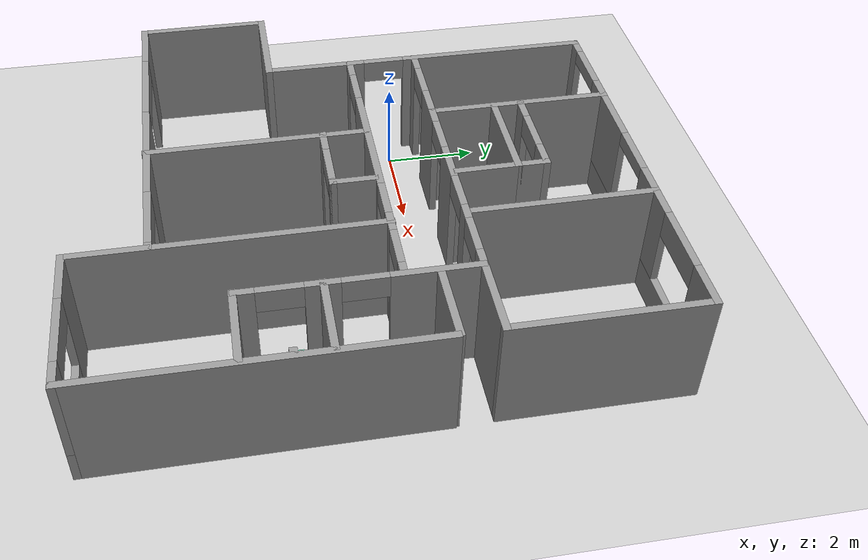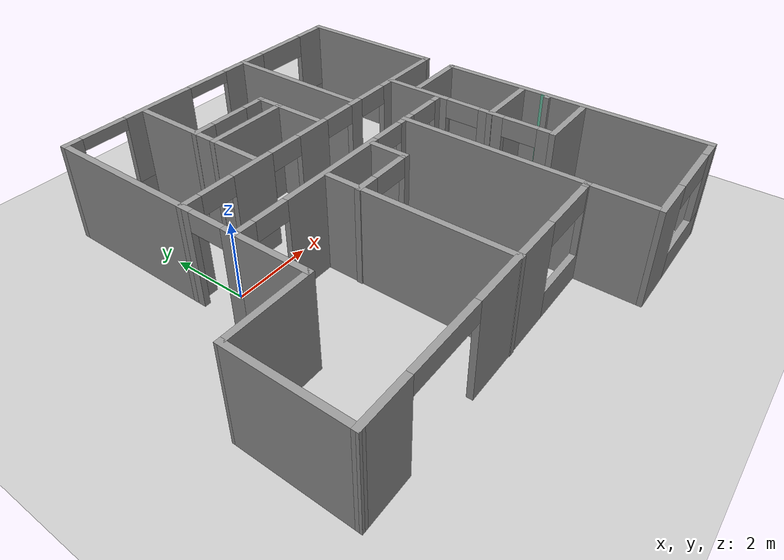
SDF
<sdf version="1.7">
 <world name="default">
  <light name="sun" type="directional">
   <pose>0 0 10 0 -0 0</pose>
   <diffuse>0.8 0.8 0.8 1</diffuse>
   <specular>0.2 0.2 0.2 1</specular>
   <attenuation>
    <range>1000</range>
    <constant>0.9</constant>
    <linear>0.01</linear>
    <quadratic>0.001</quadratic>
   </attenuation>
   <direction>-0.5 0.1 -0.9</direction>
   <spot><inner_angle>0</inner_angle><outer_angle>0</outer_angle><falloff>0</falloff></spot>
  </light>
  <model name="ground_plane">
   <static>1</static>
   <link name="link">
    <collision name="collision">
     <geometry><plane><normal>0 0 1</normal><size>100 100</size></plane></geometry>
     <surface>
      <contact><collide_bitmask>65535</collide_bitmask></contact>
      <friction><ode><mu>100</mu><mu2>50</mu2></ode></friction>
     </surface>
    </collision>
    <visual name="visual">
     <cast_shadows>0</cast_shadows>
     <geometry><plane><normal>0 0 1</normal><size>100 100</size></plane></geometry>
     <material>
      <script><uri>file://media/materials/scripts/gazebo.material</uri><name>Gazebo/Grey</name></script>
     </material>
    </visual>
   </link>
  </model>
  <gravity>0 0 -9.8</gravity>
  <magnetic_field>6e-06 2.3e-05 -4.2e-05</magnetic_field>
  <atmosphere type="adiabatic"/>
  <physics type="ode">
   <max_step_size>0.001</max_step_size>
   <real_time_factor>1</real_time_factor>
   <real_time_update_rate>1000</real_time_update_rate>
  </physics>
  <scene><ambient>0.4 0.4 0.4 1</ambient><background>0.7 0.7 0.7 1</background><shadows>1</shadows></scene>
  <spherical_coordinates>
   <surface_model>EARTH_WGS84</surface_model>
   <latitude_deg>0</latitude_deg>
   <longitude_deg>0</longitude_deg>
   <elevation>0</elevation>
   <heading_deg>0</heading_deg>
  </spherical_coordinates>
  <model name="casaMV">
   <pose>2.65857 -1.25997 0 0 -0 0</pose>
   <link name="Wall_0">
    <pose>-3.25857 3.1063 0 0 -0 -1.5708</pose>
    <visual name="Wall_0_Visual_0">
     <pose>-0.651519 0 1.25 0 -0 0</pose>
     <geometry><box><size>4.19965 0.15 2.5</size></box></geometry>
     <material>
      <script><uri>file://media/materials/scripts/gazebo.material</uri><name>Gazebo/Grey</name></script>
      <ambient>1 1 1 1</ambient>
     </material>
     <meta><layer>0</layer></meta>
    </visual>
    <collision name="Wall_0_Collision_0">
     <geometry><box><size>4.19965 0.15 2.5</size></box></geometry>
     <pose>-0.651519 0 1.25 0 -0 0</pose>
    </collision>
    <visual name="Wall_0_Visual_1">
     <pose>2.54982 0 1.25 0 -0 0</pose>
     <geometry><box><size>0.403038 0.15 2.5</size></box></geometry>
     <material>
      <script><uri>file://media/materials/scripts/gazebo.material</uri><name>Gazebo/Grey</name></script>
      <ambient>1 1 1 1</ambient>
     </material>
     <meta><layer>0</layer></meta>
    </visual>
    <collision name="Wall_0_Collision_1">
     <geometry><box><size>0.403038 0.15 2.5</size></box></geometry>
     <pose>2.54982 0 1.25 0 -0 0</pose>
    </collision>
    <visual name="Wall_0_Visual_2">
     <pose>1.8983 0 2.25 0 -0 0</pose>
     <geometry><box><size>0.9 0.15 0.5</size></box></geometry>
     <material>
      <script><uri>file://media/materials/scripts/gazebo.material</uri><name>Gazebo/Grey</name></script>
      <ambient>1 1 1 1</ambient>
     </material>
     <meta><layer>0</layer></meta>
    </visual>
    <collision name="Wall_0_Collision_2">
     <geometry><box><size>0.9 0.15 0.5</size></box></geometry>
     <pose>1.8983 0 2.25 0 -0 0</pose>
    </collision>
   </link>
   <link name="Wall_141">
    <collision name="Wall_141_Collision">
     <geometry><box><size>1.75 0.15 2.5</size></box></geometry>
     <pose>0 0 1.25 0 -0 0</pose>
    </collision>
    <visual name="Wall_141_Visual">
     <pose>0 0 1.25 0 -0 0</pose>
     <geometry><box><size>1.75 0.15 2.5</size></box></geometry>
     <material>
      <script><uri>file://media/materials/scripts/gazebo.material</uri><name>Gazebo/Grey</name></script>
      <ambient>1 1 1 1</ambient>
     </material>
     <meta><layer>0</layer></meta>
    </visual>
    <pose>4.50072 -2.70834 0 0 -0 0</pose>
   </link>
   <link name="Wall_143">
    <collision name="Wall_143_Collision">
     <geometry><box><size>7 0.15 2.5</size></box></geometry>
     <pose>0 0 1.25 0 -0 0</pose>
    </collision>
    <visual name="Wall_143_Visual">
     <pose>0 0 1.25 0 -0 0</pose>
     <geometry><box><size>7 0.15 2.5</size></box></geometry>
     <material>
      <script><uri>file://media/materials/scripts/gazebo.material</uri><name>Gazebo/Grey</name></script>
      <ambient>1 1 1 1</ambient>
     </material>
     <meta><layer>0</layer></meta>
    </visual>
    <pose>5.36197 -2.35862 0 0 -0 -1.5708</pose>
   </link>
   <link name="Wall_17">
    <pose>1.04143 5.78264 0 0 -0 0</pose>
    <visual name="Wall_17_Visual_0">
     <pose>-4.13766 0 1.25 0 -0 0</pose>
     <geometry><box><size>0.474681 0.15 2.5</size></box></geometry>
     <material>
      <script><uri>file://media/materials/scripts/gazebo.material</uri><name>Gazebo/Grey</name></script>
      <ambient>1 1 1 1</ambient>
     </material>
     <meta><layer>0</layer></meta>
    </visual>
    <collision name="Wall_17_Collision_0">
     <geometry><box><size>0.474681 0.15 2.5</size></box></geometry>
     <pose>-4.13766 0 1.25 0 -0 0</pose>
    </collision>
    <visual name="Wall_17_Visual_1">
     <pose>0.23734 0 0.35 0 -0 0</pose>
     <geometry><box><size>8.27532 0.15 0.7</size></box></geometry>
     <material>
      <script><uri>file://media/materials/scripts/gazebo.material</uri><name>Gazebo/Grey</name></script>
      <ambient>1 1 1 1</ambient>
     </material>
     <meta><layer>0</layer></meta>
    </visual>
    <collision name="Wall_17_Collision_1">
     <geometry><box><size>8.27532 0.15 0.7</size></box></geometry>
     <pose>0.23734 0 0.35 0 -0 0</pose>
    </collision>
    <visual name="Wall_17_Visual_2">
     <pose>-1.71332 0 1.6 0 -0 0</pose>
     <geometry><box><size>1.974 0.15 1.8</size></box></geometry>
     <material>
      <script><uri>file://media/materials/scripts/gazebo.material</uri><name>Gazebo/Grey</name></script>
      <ambient>1 1 1 1</ambient>
     </material>
     <meta><layer>0</layer></meta>
    </visual>
    <collision name="Wall_17_Collision_2">
     <geometry><box><size>1.974 0.15 1.8</size></box></geometry>
     <pose>-1.71332 0 1.6 0 -0 0</pose>
    </collision>
    <visual name="Wall_17_Visual_3">
     <pose>1.17293 0 1.6 0 -0 0</pose>
     <geometry><box><size>1.3985 0.15 1.8</size></box></geometry>
     <material>
      <script><uri>file://media/materials/scripts/gazebo.material</uri><name>Gazebo/Grey</name></script>
      <ambient>1 1 1 1</ambient>
     </material>
     <meta><layer>0</layer></meta>
    </visual>
    <collision name="Wall_17_Collision_3">
     <geometry><box><size>1.3985 0.15 1.8</size></box></geometry>
     <pose>1.17293 0 1.6 0 -0 0</pose>
    </collision>
    <visual name="Wall_17_Visual_4">
     <pose>3.87359 0 1.6 0 -0 0</pose>
     <geometry><box><size>1.00282 0.15 1.8</size></box></geometry>
     <material>
      <script><uri>file://media/materials/scripts/gazebo.material</uri><name>Gazebo/Grey</name></script>
      <ambient>1 1 1 1</ambient>
     </material>
     <meta><layer>0</layer></meta>
    </visual>
    <collision name="Wall_17_Collision_4">
     <geometry><box><size>1.00282 0.15 1.8</size></box></geometry>
     <pose>3.87359 0 1.6 0 -0 0</pose>
    </collision>
    <visual name="Wall_17_Visual_5">
     <pose>2.62218 0 0.7 0 -0 0</pose>
     <geometry><box><size>1.5 0.15 0</size></box></geometry>
     <material>
      <script><uri>file://media/materials/scripts/gazebo.material</uri><name>Gazebo/Grey</name></script>
      <ambient>1 1 1 1</ambient>
     </material>
     <meta><layer>0</layer></meta>
    </visual>
    <collision name="Wall_17_Collision_5">
     <geometry><box><size>1.5 0.15 0</size></box></geometry>
     <pose>2.62218 0 0.7 0 -0 0</pose>
    </collision>
    <visual name="Wall_17_Visual_6">
     <pose>2.62218 0 2.2 0 -0 0</pose>
     <geometry><box><size>1.5 0.15 0.6</size></box></geometry>
     <material>
      <script><uri>file://media/materials/scripts/gazebo.material</uri><name>Gazebo/Grey</name></script>
      <ambient>1 1 1 1</ambient>
     </material>
     <meta><layer>0</layer></meta>
    </visual>
    <collision name="Wall_17_Collision_6">
     <geometry><box><size>1.5 0.15 0.6</size></box></geometry>
     <pose>2.62218 0 2.2 0 -0 0</pose>
    </collision>
    <visual name="Wall_17_Visual_7">
     <pose>-3.30032 0 2.35 0 -0 0</pose>
     <geometry><box><size>1.2 0.15 0.3</size></box></geometry>
     <material>
      <script><uri>file://media/materials/scripts/gazebo.material</uri><name>Gazebo/Grey</name></script>
      <ambient>1 1 1 1</ambient>
     </material>
     <meta><layer>0</layer></meta>
    </visual>
    <collision name="Wall_17_Collision_7">
     <geometry><box><size>1.2 0.15 0.3</size></box></geometry>
     <pose>-3.30032 0 2.35 0 -0 0</pose>
    </collision>
    <visual name="Wall_17_Visual_8">
     <pose>-0.126319 0 2.35 0 -0 0</pose>
     <geometry><box><size>1.2 0.15 0.3</size></box></geometry>
     <material>
      <script><uri>file://media/materials/scripts/gazebo.material</uri><name>Gazebo/Grey</name></script>
      <ambient>1 1 1 1</ambient>
     </material>
     <meta><layer>0</layer></meta>
    </visual>
    <collision name="Wall_17_Collision_8">
     <geometry><box><size>1.2 0.15 0.3</size></box></geometry>
     <pose>-0.126319 0 2.35 0 -0 0</pose>
    </collision>
   </link>
   <link name="Wall_176">
    <pose>3.81197 -5.78362 0 0 -0 0</pose>
    <visual name="Wall_176_Visual_0">
     <pose>-1.04893 0 1.25 0 -0 0</pose>
     <geometry><box><size>1.15214 0.15 2.5</size></box></geometry>
     <material>
      <script><uri>file://media/materials/scripts/gazebo.material</uri><name>Gazebo/Grey</name></script>
      <ambient>1 1 1 1</ambient>
     </material>
     <meta><layer>0</layer></meta>
    </visual>
    <collision name="Wall_176_Collision_0">
     <geometry><box><size>1.15214 0.15 2.5</size></box></geometry>
     <pose>-1.04893 0 1.25 0 -0 0</pose>
    </collision>
    <visual name="Wall_176_Visual_1">
     <pose>0.576072 0 0.35 0 -0 0</pose>
     <geometry><box><size>2.09786 0.15 0.7</size></box></geometry>
     <material>
      <script><uri>file://media/materials/scripts/gazebo.material</uri><name>Gazebo/Grey</name></script>
      <ambient>1 1 1 1</ambient>
     </material>
     <meta><layer>0</layer></meta>
    </visual>
    <collision name="Wall_176_Collision_1">
     <geometry><box><size>2.09786 0.15 0.7</size></box></geometry>
     <pose>0.576072 0 0.35 0 -0 0</pose>
    </collision>
    <visual name="Wall_176_Visual_2">
     <pose>1.32607 0 1.6 0 -0 0</pose>
     <geometry><box><size>0.597857 0.15 1.8</size></box></geometry>
     <material>
      <script><uri>file://media/materials/scripts/gazebo.material</uri><name>Gazebo/Grey</name></script>
      <ambient>1 1 1 1</ambient>
     </material>
     <meta><layer>0</layer></meta>
    </visual>
    <collision name="Wall_176_Collision_2">
     <geometry><box><size>0.597857 0.15 1.8</size></box></geometry>
     <pose>1.32607 0 1.6 0 -0 0</pose>
    </collision>
    <visual name="Wall_176_Visual_3">
     <pose>0.277143 0 2.2 0 -0 0</pose>
     <geometry><box><size>1.5 0.15 0.6</size></box></geometry>
     <material>
      <script><uri>file://media/materials/scripts/gazebo.material</uri><name>Gazebo/Grey</name></script>
      <ambient>1 1 1 1</ambient>
     </material>
     <meta><layer>0</layer></meta>
    </visual>
    <collision name="Wall_176_Collision_3">
     <geometry><box><size>1.5 0.15 0.6</size></box></geometry>
     <pose>0.277143 0 2.2 0 -0 0</pose>
    </collision>
   </link>
   <link name="Wall_18">
    <collision name="Wall_18_Collision">
     <geometry><box><size>4.00269 0.15 2.5</size></box></geometry>
     <pose>0 0 1.25 0 -0 0</pose>
    </collision>
    <visual name="Wall_18_Visual">
     <pose>0 0 1.25 0 -0 0</pose>
     <geometry><box><size>4.00269 0.15 2.5</size></box></geometry>
     <material>
      <script><uri>file://media/materials/scripts/gazebo.material</uri><name>Gazebo/Grey</name></script>
      <ambient>1 1 1 1</ambient>
     </material>
     <meta><layer>0</layer></meta>
    </visual>
    <pose>5.34143 3.8563 0 0 -0 -1.5708</pose>
   </link>
   <link name="Wall_181">
    <collision name="Wall_181_Collision">
     <geometry><box><size>0.75 0.15 2.5</size></box></geometry>
     <pose>0 0 1.25 0 -0 0</pose>
    </collision>
    <visual name="Wall_181_Visual">
     <pose>0 0 1.25 0 -0 0</pose>
     <geometry><box><size>0.75 0.15 2.5</size></box></geometry>
     <material>
      <script><uri>file://media/materials/scripts/gazebo.material</uri><name>Gazebo/Grey</name></script>
      <ambient>1 1 1 1</ambient>
     </material>
     <meta><layer>0</layer></meta>
    </visual>
    <pose>0.971071 3.59397 0 0 -0 1.5708</pose>
   </link>
   <link name="Wall_182">
    <pose>-0.078929 3.89397 0 0 -0 3.14159</pose>
    <visual name="Wall_182_Visual_0">
     <pose>-0.799519 0 1.25 0 -0 0</pose>
     <geometry><box><size>0.650962 0.15 2.5</size></box></geometry>
     <material>
      <script><uri>file://media/materials/scripts/gazebo.material</uri><name>Gazebo/Grey</name></script>
      <ambient>1 1 1 1</ambient>
     </material>
     <meta><layer>0</layer></meta>
    </visual>
    <collision name="Wall_182_Collision_0">
     <geometry><box><size>0.650962 0.15 2.5</size></box></geometry>
     <pose>-0.799519 0 1.25 0 -0 0</pose>
    </collision>
    <visual name="Wall_182_Visual_1">
     <pose>0.828981 0 1.25 0 -0 0</pose>
     <geometry><box><size>0.592038 0.15 2.5</size></box></geometry>
     <material>
      <script><uri>file://media/materials/scripts/gazebo.material</uri><name>Gazebo/Grey</name></script>
      <ambient>1 1 1 1</ambient>
     </material>
     <meta><layer>0</layer></meta>
    </visual>
    <collision name="Wall_182_Collision_1">
     <geometry><box><size>0.592038 0.15 2.5</size></box></geometry>
     <pose>0.828981 0 1.25 0 -0 0</pose>
    </collision>
    <visual name="Wall_182_Visual_2">
     <pose>0.029462 0 2.25 0 -0 0</pose>
     <geometry><box><size>1.007 0.15 0.5</size></box></geometry>
     <material>
      <script><uri>file://media/materials/scripts/gazebo.material</uri><name>Gazebo/Grey</name></script>
      <ambient>1 1 1 1</ambient>
     </material>
     <meta><layer>0</layer></meta>
    </visual>
    <collision name="Wall_182_Collision_2">
     <geometry><box><size>1.007 0.15 0.5</size></box></geometry>
     <pose>0.029462 0 2.25 0 -0 0</pose>
    </collision>
   </link>
   <link name="Wall_184">
    <pose>-1.56188 -4.19019 0 0 -0 0</pose>
    <visual name="Wall_184_Visual_0">
     <pose>-3.21151 0 1.25 0 -0 0</pose>
     <geometry><box><size>1.32699 0.15 2.5</size></box></geometry>
     <material>
      <script><uri>file://media/materials/scripts/gazebo.material</uri><name>Gazebo/Grey</name></script>
      <ambient>1 1 1 1</ambient>
     </material>
     <meta><layer>0</layer></meta>
    </visual>
    <collision name="Wall_184_Collision_0">
     <geometry><box><size>1.32699 0.15 2.5</size></box></geometry>
     <pose>-3.21151 0 1.25 0 -0 0</pose>
    </collision>
    <visual name="Wall_184_Visual_1">
     <pose>0.813736 0 1.25 0 -0 0</pose>
     <geometry><box><size>2.7235 0.15 2.5</size></box></geometry>
     <material>
      <script><uri>file://media/materials/scripts/gazebo.material</uri><name>Gazebo/Grey</name></script>
      <ambient>1 1 1 1</ambient>
     </material>
     <meta><layer>0</layer></meta>
    </visual>
    <collision name="Wall_184_Collision_1">
     <geometry><box><size>2.7235 0.15 2.5</size></box></geometry>
     <pose>0.813736 0 1.25 0 -0 0</pose>
    </collision>
    <visual name="Wall_184_Visual_2">
     <pose>3.02524 0 0.35 0 -0 0</pose>
     <geometry><box><size>1.69952 0.15 0.7</size></box></geometry>
     <material>
      <script><uri>file://media/materials/scripts/gazebo.material</uri><name>Gazebo/Grey</name></script>
      <ambient>1 1 1 1</ambient>
     </material>
     <meta><layer>0</layer></meta>
    </visual>
    <collision name="Wall_184_Collision_2">
     <geometry><box><size>1.69952 0.15 0.7</size></box></geometry>
     <pose>3.02524 0 0.35 0 -0 0</pose>
    </collision>
    <visual name="Wall_184_Visual_3">
     <pose>3.77524 0 1.6 0 -0 0</pose>
     <geometry><box><size>0.199515 0.15 1.8</size></box></geometry>
     <material>
      <script><uri>file://media/materials/scripts/gazebo.material</uri><name>Gazebo/Grey</name></script>
      <ambient>1 1 1 1</ambient>
     </material>
     <meta><layer>0</layer></meta>
    </visual>
    <collision name="Wall_184_Collision_3">
     <geometry><box><size>0.199515 0.15 1.8</size></box></geometry>
     <pose>3.77524 0 1.6 0 -0 0</pose>
    </collision>
    <visual name="Wall_184_Visual_4">
     <pose>2.92549 0 2.2 0 -0 0</pose>
     <geometry><box><size>1.5 0.15 0.6</size></box></geometry>
     <material>
      <script><uri>file://media/materials/scripts/gazebo.material</uri><name>Gazebo/Grey</name></script>
      <ambient>1 1 1 1</ambient>
     </material>
     <meta><layer>0</layer></meta>
    </visual>
    <collision name="Wall_184_Collision_4">
     <geometry><box><size>1.5 0.15 0.6</size></box></geometry>
     <pose>2.92549 0 2.2 0 -0 0</pose>
    </collision>
    <visual name="Wall_184_Visual_5">
     <pose>-1.54801 0 2.25 0 -0 0</pose>
     <geometry><box><size>2 0.15 0.5</size></box></geometry>
     <material>
      <script><uri>file://media/materials/scripts/gazebo.material</uri><name>Gazebo/Grey</name></script>
      <ambient>1 1 1 1</ambient>
     </material>
     <meta><layer>0</layer></meta>
    </visual>
    <collision name="Wall_184_Collision_5">
     <geometry><box><size>2 0.15 0.5</size></box></geometry>
     <pose>-1.54801 0 2.25 0 -0 0</pose>
    </collision>
   </link>
   <link name="Wall_2">
    <pose>1.04101 1.93039 0 0 -0 0</pose>
    <visual name="Wall_2_Visual_0">
     <pose>-4.10845 0 1.25 0 -0 0</pose>
     <geometry><box><size>0.533098 0.15 2.5</size></box></geometry>
     <material>
      <script><uri>file://media/materials/scripts/gazebo.material</uri><name>Gazebo/Grey</name></script>
      <ambient>1 1 1 1</ambient>
     </material>
     <meta><layer>0</layer></meta>
    </visual>
    <collision name="Wall_2_Collision_0">
     <geometry><box><size>0.533098 0.15 2.5</size></box></geometry>
     <pose>-4.10845 0 1.25 0 -0 0</pose>
    </collision>
    <visual name="Wall_2_Visual_1">
     <pose>-2.36265 0 1.25 0 -0 0</pose>
     <geometry><box><size>1.1585 0.15 2.5</size></box></geometry>
     <material>
      <script><uri>file://media/materials/scripts/gazebo.material</uri><name>Gazebo/Grey</name></script>
      <ambient>1 1 1 1</ambient>
     </material>
     <meta><layer>0</layer></meta>
    </visual>
    <collision name="Wall_2_Collision_1">
     <geometry><box><size>1.1585 0.15 2.5</size></box></geometry>
     <pose>-2.36265 0 1.25 0 -0 0</pose>
    </collision>
    <visual name="Wall_2_Visual_2">
     <pose>-0.401671 0 1.25 0 -0 0</pose>
     <geometry><box><size>0.963462 0.15 2.5</size></box></geometry>
     <material>
      <script><uri>file://media/materials/scripts/gazebo.material</uri><name>Gazebo/Grey</name></script>
      <ambient>1 1 1 1</ambient>
     </material>
     <meta><layer>0</layer></meta>
    </visual>
    <collision name="Wall_2_Collision_2">
     <geometry><box><size>0.963462 0.15 2.5</size></box></geometry>
     <pose>-0.401671 0 1.25 0 -0 0</pose>
    </collision>
    <visual name="Wall_2_Visual_3">
     <pose>1.18006 0 1.25 0 -0 0</pose>
     <geometry><box><size>0.4 0.15 2.5</size></box></geometry>
     <material>
      <script><uri>file://media/materials/scripts/gazebo.material</uri><name>Gazebo/Grey</name></script>
      <ambient>1 1 1 1</ambient>
     </material>
     <meta><layer>0</layer></meta>
    </visual>
    <collision name="Wall_2_Collision_3">
     <geometry><box><size>0.4 0.15 2.5</size></box></geometry>
     <pose>1.18006 0 1.25 0 -0 0</pose>
    </collision>
    <visual name="Wall_2_Visual_4">
     <pose>3.32753 0 1.25 0 -0 0</pose>
     <geometry><box><size>2.09494 0.15 2.5</size></box></geometry>
     <material>
      <script><uri>file://media/materials/scripts/gazebo.material</uri><name>Gazebo/Grey</name></script>
      <ambient>1 1 1 1</ambient>
     </material>
     <meta><layer>0</layer></meta>
    </visual>
    <collision name="Wall_2_Collision_4">
     <geometry><box><size>2.09494 0.15 2.5</size></box></geometry>
     <pose>3.32753 0 1.25 0 -0 0</pose>
    </collision>
    <visual name="Wall_2_Visual_5">
     <pose>-3.3919 0 2.25 0 -0 0</pose>
     <geometry><box><size>0.9 0.15 0.5</size></box></geometry>
     <material>
      <script><uri>file://media/materials/scripts/gazebo.material</uri><name>Gazebo/Grey</name></script>
      <ambient>1 1 1 1</ambient>
     </material>
     <meta><layer>0</layer></meta>
    </visual>
    <collision name="Wall_2_Collision_5">
     <geometry><box><size>0.9 0.15 0.5</size></box></geometry>
     <pose>-3.3919 0 2.25 0 -0 0</pose>
    </collision>
    <visual name="Wall_2_Visual_6">
     <pose>-1.3334 0 2.25 0 -0 0</pose>
     <geometry><box><size>0.9 0.15 0.5</size></box></geometry>
     <material>
      <script><uri>file://media/materials/scripts/gazebo.material</uri><name>Gazebo/Grey</name></script>
      <ambient>1 1 1 1</ambient>
     </material>
     <meta><layer>0</layer></meta>
    </visual>
    <collision name="Wall_2_Collision_6">
     <geometry><box><size>0.9 0.15 0.5</size></box></geometry>
     <pose>-1.3334 0 2.25 0 -0 0</pose>
    </collision>
    <visual name="Wall_2_Visual_7">
     <pose>0.53006 0 2.25 0 -0 0</pose>
     <geometry><box><size>0.9 0.15 0.5</size></box></geometry>
     <material>
      <script><uri>file://media/materials/scripts/gazebo.material</uri><name>Gazebo/Grey</name></script>
      <ambient>1 1 1 1</ambient>
     </material>
     <meta><layer>0</layer></meta>
    </visual>
    <collision name="Wall_2_Collision_7">
     <geometry><box><size>0.9 0.15 0.5</size></box></geometry>
     <pose>0.53006 0 2.25 0 -0 0</pose>
    </collision>
    <visual name="Wall_2_Visual_8">
     <pose>1.83006 0 2.25 0 -0 0</pose>
     <geometry><box><size>0.9 0.15 0.5</size></box></geometry>
     <material>
      <script><uri>file://media/materials/scripts/gazebo.material</uri><name>Gazebo/Grey</name></script>
      <ambient>1 1 1 1</ambient>
     </material>
     <meta><layer>0</layer></meta>
    </visual>
    <collision name="Wall_2_Collision_8">
     <geometry><box><size>0.9 0.15 0.5</size></box></geometry>
     <pose>1.83006 0 2.25 0 -0 0</pose>
    </collision>
   </link>
   <link name="Wall_21">
    <collision name="Wall_21_Collision">
     <geometry><box><size>4 0.15 2.5</size></box></geometry>
     <pose>0 0 1.25 0 -0 0</pose>
    </collision>
    <visual name="Wall_21_Visual">
     <pose>0 0 1.25 0 -0 0</pose>
     <geometry><box><size>4 0.15 2.5</size></box></geometry>
     <material>
      <script><uri>file://media/materials/scripts/gazebo.material</uri><name>Gazebo/Grey</name></script>
      <ambient>1 1 1 1</ambient>
     </material>
     <meta><layer>0</layer></meta>
    </visual>
    <pose>-1.12569 3.85862 0 0 -0 1.5708</pose>
   </link>
   <link name="Wall_26">
    <collision name="Wall_26_Collision">
     <geometry><box><size>4 0.15 2.5</size></box></geometry>
     <pose>0 0 1.25 0 -0 0</pose>
    </collision>
    <visual name="Wall_26_Visual">
     <pose>0 0 1.25 0 -0 0</pose>
     <geometry><box><size>4 0.15 2.5</size></box></geometry>
     <material>
      <script><uri>file://media/materials/scripts/gazebo.material</uri><name>Gazebo/Grey</name></script>
      <ambient>1 1 1 1</ambient>
     </material>
     <meta><layer>0</layer></meta>
    </visual>
    <pose>2.22431 3.85862 0 0 -0 1.5708</pose>
   </link>
   <link name="Wall_28">
    <collision name="Wall_28_Collision">
     <geometry><box><size>1.5 0.15 2.5</size></box></geometry>
     <pose>0 0 1.25 0 -0 0</pose>
    </collision>
    <visual name="Wall_28_Visual">
     <pose>0 0 1.25 0 -0 0</pose>
     <geometry><box><size>1.5 0.15 2.5</size></box></geometry>
     <material>
      <script><uri>file://media/materials/scripts/gazebo.material</uri><name>Gazebo/Grey</name></script>
      <ambient>1 1 1 1</ambient>
     </material>
     <meta><layer>0</layer></meta>
    </visual>
    <pose>0.976071 2.61897 0 0 -0 1.5782</pose>
   </link>
   <link name="Wall_31">
    <collision name="Wall_31_Collision">
     <geometry><box><size>2.25 0.15 2.5</size></box></geometry>
     <pose>0 0 1.25 0 -0 0</pose>
    </collision>
    <visual name="Wall_31_Visual">
     <pose>0 0 1.25 0 -0 0</pose>
     <geometry><box><size>2.25 0.15 2.5</size></box></geometry>
     <material>
      <script><uri>file://media/materials/scripts/gazebo.material</uri><name>Gazebo/Grey</name></script>
      <ambient>1 1 1 1</ambient>
     </material>
     <meta><layer>0</layer></meta>
    </visual>
    <pose>-0.078929 3.29397 0 0 -0 3.14159</pose>
   </link>
   <link name="Wall_38">
    <pose>0.166428 0.429969 0 0 -0 0</pose>
    <visual name="Wall_38_Visual_0">
     <pose>-3.22216 0 1.25 0 -0 0</pose>
     <geometry><box><size>0.555681 0.15 2.5</size></box></geometry>
     <material>
      <script><uri>file://media/materials/scripts/gazebo.material</uri><name>Gazebo/Grey</name></script>
      <ambient>1 1 1 1</ambient>
     </material>
     <meta><layer>0</layer></meta>
    </visual>
    <collision name="Wall_38_Collision_0">
     <geometry><box><size>0.555681 0.15 2.5</size></box></geometry>
     <pose>-3.22216 0 1.25 0 -0 0</pose>
    </collision>
    <visual name="Wall_38_Visual_1">
     <pose>-0.551237 0 1.25 0 -0 0</pose>
     <geometry><box><size>2.98617 0.15 2.5</size></box></geometry>
     <material>
      <script><uri>file://media/materials/scripts/gazebo.material</uri><name>Gazebo/Grey</name></script>
      <ambient>1 1 1 1</ambient>
     </material>
     <meta><layer>0</layer></meta>
    </visual>
    <collision name="Wall_38_Collision_1">
     <geometry><box><size>2.98617 0.15 2.5</size></box></geometry>
     <pose>-0.551237 0 1.25 0 -0 0</pose>
    </collision>
    <visual name="Wall_38_Visual_2">
     <pose>2.09951 0 1.25 0 -0 0</pose>
     <geometry><box><size>0.515335 0.15 2.5</size></box></geometry>
     <material>
      <script><uri>file://media/materials/scripts/gazebo.material</uri><name>Gazebo/Grey</name></script>
      <ambient>1 1 1 1</ambient>
     </material>
     <meta><layer>0</layer></meta>
    </visual>
    <collision name="Wall_38_Collision_2">
     <geometry><box><size>0.515335 0.15 2.5</size></box></geometry>
     <pose>2.09951 0 1.25 0 -0 0</pose>
    </collision>
    <visual name="Wall_38_Visual_3">
     <pose>3.37859 0 1.25 0 -0 0</pose>
     <geometry><box><size>0.242819 0.15 2.5</size></box></geometry>
     <material>
      <script><uri>file://media/materials/scripts/gazebo.material</uri><name>Gazebo/Grey</name></script>
      <ambient>1 1 1 1</ambient>
     </material>
     <meta><layer>0</layer></meta>
    </visual>
    <collision name="Wall_38_Collision_3">
     <geometry><box><size>0.242819 0.15 2.5</size></box></geometry>
     <pose>3.37859 0 1.25 0 -0 0</pose>
    </collision>
    <visual name="Wall_38_Visual_4">
     <pose>-2.49432 0 2.25 0 -0 0</pose>
     <geometry><box><size>0.9 0.15 0.5</size></box></geometry>
     <material>
      <script><uri>file://media/materials/scripts/gazebo.material</uri><name>Gazebo/Grey</name></script>
      <ambient>1 1 1 1</ambient>
     </material>
     <meta><layer>0</layer></meta>
    </visual>
    <collision name="Wall_38_Collision_4">
     <geometry><box><size>0.9 0.15 0.5</size></box></geometry>
     <pose>-2.49432 0 2.25 0 -0 0</pose>
    </collision>
    <visual name="Wall_38_Visual_5">
     <pose>1.39184 0 2.25 0 -0 0</pose>
     <geometry><box><size>0.9 0.15 0.5</size></box></geometry>
     <material>
      <script><uri>file://media/materials/scripts/gazebo.material</uri><name>Gazebo/Grey</name></script>
      <ambient>1 1 1 1</ambient>
     </material>
     <meta><layer>0</layer></meta>
    </visual>
    <collision name="Wall_38_Collision_5">
     <geometry><box><size>0.9 0.15 0.5</size></box></geometry>
     <pose>1.39184 0 2.25 0 -0 0</pose>
    </collision>
    <visual name="Wall_38_Visual_6">
     <pose>2.80718 0 2.25 0 -0 0</pose>
     <geometry><box><size>0.9 0.15 0.5</size></box></geometry>
     <material>
      <script><uri>file://media/materials/scripts/gazebo.material</uri><name>Gazebo/Grey</name></script>
      <ambient>1 1 1 1</ambient>
     </material>
     <meta><layer>0</layer></meta>
    </visual>
    <collision name="Wall_38_Collision_6">
     <geometry><box><size>0.9 0.15 0.5</size></box></geometry>
     <pose>2.80718 0 2.25 0 -0 0</pose>
    </collision>
   </link>
   <link name="Wall_40">
    <pose>3.71752 -0.386029 0 0 -0 -1.5708</pose>
    <visual name="Wall_40_Visual_0">
     <pose>-1.46201 0 1.25 0 -0 0</pose>
     <geometry><box><size>1.82597 0.15 2.5</size></box></geometry>
     <material>
      <script><uri>file://media/materials/scripts/gazebo.material</uri><name>Gazebo/Grey</name></script>
      <ambient>1 1 1 1</ambient>
     </material>
     <meta><layer>0</layer></meta>
    </visual>
    <collision name="Wall_40_Collision_0">
     <geometry><box><size>1.82597 0.15 2.5</size></box></geometry>
     <pose>-1.46201 0 1.25 0 -0 0</pose>
    </collision>
    <visual name="Wall_40_Visual_1">
     <pose>0.688723 0 1.25 0 -0 0</pose>
     <geometry><box><size>0.6755 0.15 2.5</size></box></geometry>
     <material>
      <script><uri>file://media/materials/scripts/gazebo.material</uri><name>Gazebo/Grey</name></script>
      <ambient>1 1 1 1</ambient>
     </material>
     <meta><layer>0</layer></meta>
    </visual>
    <collision name="Wall_40_Collision_1">
     <geometry><box><size>0.6755 0.15 2.5</size></box></geometry>
     <pose>0.688723 0 1.25 0 -0 0</pose>
    </collision>
    <visual name="Wall_40_Visual_2">
     <pose>2.15074 0 1.25 0 -0 0</pose>
     <geometry><box><size>0.448527 0.15 2.5</size></box></geometry>
     <material>
      <script><uri>file://media/materials/scripts/gazebo.material</uri><name>Gazebo/Grey</name></script>
      <ambient>1 1 1 1</ambient>
     </material>
     <meta><layer>0</layer></meta>
    </visual>
    <collision name="Wall_40_Collision_2">
     <geometry><box><size>0.448527 0.15 2.5</size></box></geometry>
     <pose>2.15074 0 1.25 0 -0 0</pose>
    </collision>
    <visual name="Wall_40_Visual_3">
     <pose>-0.099027 0 2.25 0 -0 0</pose>
     <geometry><box><size>0.9 0.15 0.5</size></box></geometry>
     <material>
      <script><uri>file://media/materials/scripts/gazebo.material</uri><name>Gazebo/Grey</name></script>
      <ambient>1 1 1 1</ambient>
     </material>
     <meta><layer>0</layer></meta>
    </visual>
    <collision name="Wall_40_Collision_3">
     <geometry><box><size>0.9 0.15 0.5</size></box></geometry>
     <pose>-0.099027 0 2.25 0 -0 0</pose>
    </collision>
    <visual name="Wall_40_Visual_4">
     <pose>1.47647 0 2.25 0 -0 0</pose>
     <geometry><box><size>0.9 0.15 0.5</size></box></geometry>
     <material>
      <script><uri>file://media/materials/scripts/gazebo.material</uri><name>Gazebo/Grey</name></script>
      <ambient>1 1 1 1</ambient>
     </material>
     <meta><layer>0</layer></meta>
    </visual>
    <collision name="Wall_40_Collision_4">
     <geometry><box><size>0.9 0.15 0.5</size></box></geometry>
     <pose>1.47647 0 2.25 0 -0 0</pose>
    </collision>
   </link>
   <link name="Wall_46">
    <collision name="Wall_46_Collision">
     <geometry><box><size>0.15 0.15 2.5</size></box></geometry>
     <pose>0 0 1.25 0 -0 0</pose>
    </collision>
    <visual name="Wall_46_Visual">
     <pose>0 0 1.25 0 -0 0</pose>
     <geometry><box><size>0.15 0.15 2.5</size></box></geometry>
     <material>
      <script><uri>file://media/materials/scripts/gazebo.material</uri><name>Gazebo/Grey</name></script>
      <ambient>0.435294 0.796078 0.67451 1</ambient>
     </material>
     <meta><layer>0</layer></meta>
    </visual>
    <pose>5.34498 -1.65681 0 0 -0 0</pose>
   </link>
   <link name="Wall_54">
    <collision name="Wall_54_Collision">
     <geometry><box><size>6.25 0.15 2.5</size></box></geometry>
     <pose>0 0 1.25 0 -0 0</pose>
    </collision>
    <visual name="Wall_54_Visual">
     <pose>0 0 1.25 0 -0 0</pose>
     <geometry><box><size>6.25 0.15 2.5</size></box></geometry>
     <material>
      <script><uri>file://media/materials/scripts/gazebo.material</uri><name>Gazebo/Grey</name></script>
      <ambient>1 1 1 1</ambient>
     </material>
     <meta><layer>0</layer></meta>
    </visual>
    <pose>2.26107 -2.60603 0 0 -0 -1.5708</pose>
   </link>
   <link name="Wall_56">
    <collision name="Wall_56_Collision">
     <geometry><box><size>1.75361 0.15 2.5</size></box></geometry>
     <pose>0 0 1.25 0 -0 0</pose>
    </collision>
    <visual name="Wall_56_Visual">
     <pose>0 0 1.25 0 -0 0</pose>
     <geometry><box><size>1.75361 0.15 2.5</size></box></geometry>
     <material>
      <script><uri>file://media/materials/scripts/gazebo.material</uri><name>Gazebo/Grey</name></script>
      <ambient>1 1 1 1</ambient>
     </material>
     <meta><layer>0</layer></meta>
    </visual>
    <pose>4.53285 1.11123 0 0 -0 0.008247</pose>
   </link>
   <link name="Wall_59">
    <collision name="Wall_59_Collision">
     <geometry><box><size>1.75 0.15 2.5</size></box></geometry>
     <pose>0 0 1.25 0 -0 0</pose>
    </collision>
    <visual name="Wall_59_Visual">
     <pose>0 0 1.25 0 -0 0</pose>
     <geometry><box><size>1.75 0.15 2.5</size></box></geometry>
     <material>
      <script><uri>file://media/materials/scripts/gazebo.material</uri><name>Gazebo/Grey</name></script>
      <ambient>1 1 1 1</ambient>
     </material>
     <meta><layer>0</layer></meta>
    </visual>
    <pose>4.49957 -1.05553 0 0 -0 0</pose>
   </link>
   <link name="Wall_63">
    <collision name="Wall_63_Collision">
     <geometry><box><size>0.15 0.15 2.5</size></box></geometry>
     <pose>0 0 1.25 0 -0 0</pose>
    </collision>
    <visual name="Wall_63_Visual">
     <pose>0 0 1.25 0 -0 0</pose>
     <geometry><box><size>0.15 0.15 2.5</size></box></geometry>
     <material>
      <script><uri>file://media/materials/scripts/gazebo.material</uri><name>Gazebo/Grey</name></script>
      <ambient>1 1 1 1</ambient>
     </material>
     <meta><layer>0</layer></meta>
    </visual>
    <pose>5.26107 -1.76603 0 0 -0 0</pose>
   </link>
   <link name="Wall_71">
    <collision name="Wall_71_Collision">
     <geometry><box><size>2 0.15 2.5</size></box></geometry>
     <pose>0 0 1.25 0 -0 0</pose>
    </collision>
    <visual name="Wall_71_Visual">
     <pose>0 0 1.25 0 -0 0</pose>
     <geometry><box><size>2 0.15 2.5</size></box></geometry>
     <material>
      <script><uri>file://media/materials/scripts/gazebo.material</uri><name>Gazebo/Grey</name></script>
      <ambient>1 1 1 1</ambient>
     </material>
     <meta><layer>0</layer></meta>
    </visual>
    <pose>-3.25857 -0.495031 0 0 -0 -1.5708</pose>
   </link>
   <link name="Wall_72">
    <collision name="Wall_72_Collision">
     <geometry><box><size>2.25 0.15 2.5</size></box></geometry>
     <pose>0 0 1.25 0 -0 0</pose>
    </collision>
    <visual name="Wall_72_Visual">
     <pose>0 0 1.25 0 -0 0</pose>
     <geometry><box><size>2.25 0.15 2.5</size></box></geometry>
     <material>
      <script><uri>file://media/materials/scripts/gazebo.material</uri><name>Gazebo/Grey</name></script>
      <ambient>1 1 1 1</ambient>
     </material>
     <meta><layer>0</layer></meta>
    </visual>
    <pose>-4.30857 -1.42003 0 0 -0 3.14159</pose>
   </link>
   <link name="Wall_73">
    <collision name="Wall_73_Collision">
     <geometry><box><size>2.92018 0.15 2.5</size></box></geometry>
     <pose>0 0 1.25 0 -0 0</pose>
    </collision>
    <visual name="Wall_73_Visual">
     <pose>0 0 1.25 0 -0 0</pose>
     <geometry><box><size>2.92018 0.15 2.5</size></box></geometry>
     <material>
      <script><uri>file://media/materials/scripts/gazebo.material</uri><name>Gazebo/Grey</name></script>
      <ambient>1 1 1 1</ambient>
     </material>
     <meta><layer>0</layer></meta>
    </visual>
    <pose>-5.36022 -2.80511 0 0 -0 -1.57199</pose>
   </link>
   <link name="Wall_75">
    <collision name="Wall_75_Collision">
     <geometry><box><size>4.75 0.15 2.5</size></box></geometry>
     <pose>0 0 1.25 0 -0 0</pose>
    </collision>
    <visual name="Wall_75_Visual">
     <pose>0 0 1.25 0 -0 0</pose>
     <geometry><box><size>4.75 0.15 2.5</size></box></geometry>
     <material>
      <script><uri>file://media/materials/scripts/gazebo.material</uri><name>Gazebo/Grey</name></script>
      <ambient>1 1 1 1</ambient>
     </material>
     <meta><layer>0</layer></meta>
    </visual>
    <pose>-0.661227 -1.90737 0 0 -0 -1.5708</pose>
   </link>
   <link name="Wall_77">
    <collision name="Wall_77_Collision">
     <geometry><box><size>1 0.15 2.5</size></box></geometry>
     <pose>0 0 1.25 0 -0 0</pose>
    </collision>
    <visual name="Wall_77_Visual">
     <pose>0 0 1.25 0 -0 0</pose>
     <geometry><box><size>1 0.15 2.5</size></box></geometry>
     <material>
      <script><uri>file://media/materials/scripts/gazebo.material</uri><name>Gazebo/Grey</name></script>
      <ambient>1 1 1 1</ambient>
     </material>
     <meta><layer>0</layer></meta>
    </visual>
    <pose>0.915099 -0.090442 0 0 -0 -1.5708</pose>
   </link>
   <link name="Wall_78">
    <pose>0.115098 -0.515442 0 0 -0 3.14159</pose>
    <visual name="Wall_78_Visual_0">
     <pose>-0.784452 0 1.25 0 -0 0</pose>
     <geometry><box><size>0.181095 0.15 2.5</size></box></geometry>
     <material>
      <script><uri>file://media/materials/scripts/gazebo.material</uri><name>Gazebo/Grey</name></script>
      <ambient>1 1 1 1</ambient>
     </material>
     <meta><layer>0</layer></meta>
    </visual>
    <collision name="Wall_78_Collision_0">
     <geometry><box><size>0.181095 0.15 2.5</size></box></geometry>
     <pose>-0.784452 0 1.25 0 -0 0</pose>
    </collision>
    <visual name="Wall_78_Visual_1">
     <pose>0.577798 0 1.25 0 -0 0</pose>
     <geometry><box><size>0.594405 0.15 2.5</size></box></geometry>
     <material>
      <script><uri>file://media/materials/scripts/gazebo.material</uri><name>Gazebo/Grey</name></script>
      <ambient>1 1 1 1</ambient>
     </material>
     <meta><layer>0</layer></meta>
    </visual>
    <collision name="Wall_78_Collision_1">
     <geometry><box><size>0.594405 0.15 2.5</size></box></geometry>
     <pose>0.577798 0 1.25 0 -0 0</pose>
    </collision>
    <visual name="Wall_78_Visual_2">
     <pose>-0.206655 0 2.25 0 -0 0</pose>
     <geometry><box><size>0.9745 0.15 0.5</size></box></geometry>
     <material>
      <script><uri>file://media/materials/scripts/gazebo.material</uri><name>Gazebo/Grey</name></script>
      <ambient>1 1 1 1</ambient>
     </material>
     <meta><layer>0</layer></meta>
    </visual>
    <collision name="Wall_78_Collision_2">
     <geometry><box><size>0.9745 0.15 0.5</size></box></geometry>
     <pose>-0.206655 0 2.25 0 -0 0</pose>
    </collision>
   </link>
   <static>1</static>
  </model>
 </world>
</sdf>
